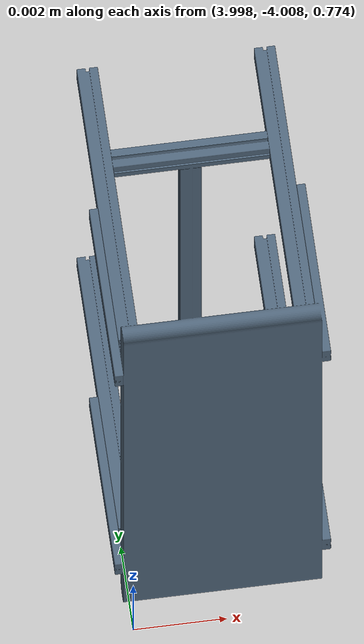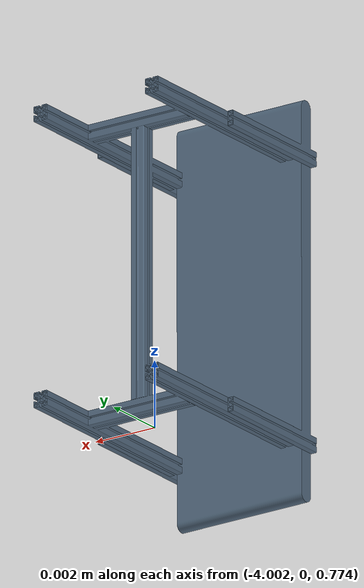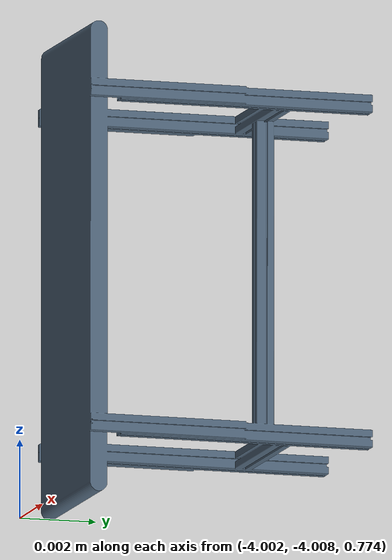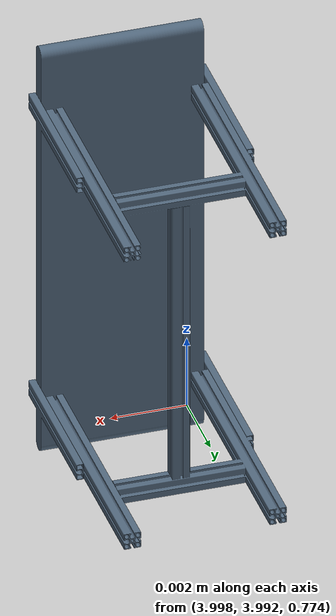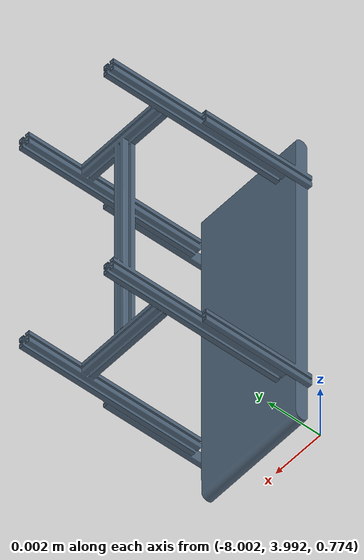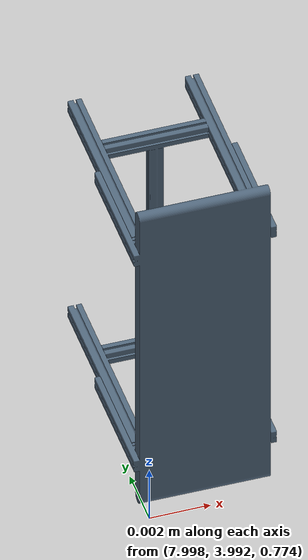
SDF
<?xml version="1.0" ?>
<sdf version="1.6">
<!-- Conveyor Begin -->

  <model name="assembly_line">
    <static>true</static>
    <link name="conveyor_belt_0">
      <collision name="collision_belt_side_back_0">
        <pose>-4 4 0.78 1.57 0 0</pose>
        <geometry>
          <mesh>
            <scale> .01 .01 .01 </scale>
            <uri>model://conveyor_belt/meshes/Conveyor_Belt.stl</uri>
          </mesh>
        </geometry>
      </collision>
      <visual name="visual_0">
        <pose>-4 4 0.78 1.57 0 0</pose>
            <material> <!-- Wheel material -->
              <ambient>0.3137 0.4 0.4824 1</ambient>
              <diffuse>0.3137 0.4 0.4824 1</diffuse>
              <specular>0.3137 0.4 0.4824 1</specular>
              <emissive>0 0 0 1</emissive>
            </material>
        <geometry>
          <mesh>
            <scale> .01 .01 .01 </scale>
            <uri>model://conveyor_belt/meshes/Conveyor_Belt.stl</uri>
          </mesh>
        </geometry>
      </visual>
    </link>
    <link name="conveyor_belt_1">
      <collision name="collision_belt_side_back_1">
        <pose>-4 0 0.78 1.57 0 0</pose>
        <geometry>
          <mesh>
            <scale> .01 .01 .01 </scale>
            <uri>model://conveyor_belt/meshes/Conveyor_Belt.stl</uri>
          </mesh>
        </geometry>
      </collision>
      <visual name="visual_1">
        <pose>-4 0 0.78 1.57 0 0</pose>
            <material> <!-- Wheel material -->
              <ambient>0.3137 0.4 0.4824 1</ambient>
              <diffuse>0.3137 0.4 0.4824 1</diffuse>
              <specular>0.3137 0.4 0.4824 1</specular>
              <emissive>0 0 0 1</emissive>
            </material>
        <geometry>
          <mesh>
            <scale> .01 .01 .01 </scale>
            <uri>model://conveyor_belt/meshes/Conveyor_Belt.stl</uri>
          </mesh>
        </geometry>
      </visual>
    </link>
    <link name="conveyor_belt_2">
      <collision name="collision_belt_side_back_2">
        <pose>-4 -4 0.78 1.57 0 0</pose>
        <geometry>
          <mesh>
            <scale> .01 .01 .01 </scale>
            <uri>model://conveyor_belt/meshes/Conveyor_Belt.stl</uri>
          </mesh>
        </geometry>
      </collision>
      <visual name="visual_2">
        <pose>-4 -4 0.78 1.57 0 0</pose>
            <material> <!-- Wheel material -->
              <ambient>0.3137 0.4 0.4824 1</ambient>
              <diffuse>0.3137 0.4 0.4824 1</diffuse>
              <specular>0.3137 0.4 0.4824 1</specular>
              <emissive>0 0 0 1</emissive>
            </material>
        <geometry>
          <mesh>
            <scale> .01 .01 .01 </scale>
            <uri>model://conveyor_belt/meshes/Conveyor_Belt.stl</uri>
          </mesh>
        </geometry>
      </visual>
    </link>
    <link name="conveyor_belt_3">
      <collision name="collision_belt_side_back_3">
        <pose>4 4 0.78 1.57 0 0</pose>
        <geometry>
          <mesh>
            <scale> .01 .01 .01 </scale>
            <uri>model://conveyor_belt/meshes/Conveyor_Belt.stl</uri>
          </mesh>
        </geometry>
      </collision>
      <visual name="visual_3">
        <pose>4 4 0.78 1.57 0 0</pose>
            <material> <!-- Wheel material -->
              <ambient>0.3137 0.4 0.4824 1</ambient>
              <diffuse>0.3137 0.4 0.4824 1</diffuse>
              <specular>0.3137 0.4 0.4824 1</specular>
              <emissive>0 0 0 1</emissive>
            </material>
        <geometry>
          <mesh>
            <scale> .01 .01 .01 </scale>
            <uri>model://conveyor_belt/meshes/Conveyor_Belt.stl</uri>
          </mesh>
        </geometry>
      </visual>
    </link>
    <link name="conveyor_belt_4">
      <collision name="collision_belt_side_back_4">
        <pose>4 0 0.78 1.57 0 0</pose>
        <geometry>
          <mesh>
            <scale> .01 .01 .01 </scale>
            <uri>model://conveyor_belt/meshes/Conveyor_Belt.stl</uri>
          </mesh>
        </geometry>
      </collision>
      <visual name="visual_4">
        <pose>4 0 0.78 1.57 0 0</pose>
            <material> <!-- Wheel material -->
              <ambient>0.3137 0.4 0.4824 1</ambient>
              <diffuse>0.3137 0.4 0.4824 1</diffuse>
              <specular>0.3137 0.4 0.4824 1</specular>
              <emissive>0 0 0 1</emissive>
            </material>
        <geometry>
          <mesh>
            <scale> .01 .01 .01 </scale>
            <uri>model://conveyor_belt/meshes/Conveyor_Belt.stl</uri>
          </mesh>
        </geometry>
      </visual>
    </link>
    <link name="conveyor_belt_5">
      <collision name="collision_belt_side_back_5">
        <pose>4 -4 0.78 1.57 0 0</pose>
        <geometry>
          <mesh>
            <scale> .01 .01 .01 </scale>
            <uri>model://conveyor_belt/meshes/Conveyor_Belt.stl</uri>
          </mesh>
        </geometry>
      </collision>
      <visual name="visual_5">
        <pose>4 -4 0.78 1.57 0 0</pose>
            <material> <!-- Wheel material -->
              <ambient>0.3137 0.4 0.4824 1</ambient>
              <diffuse>0.3137 0.4 0.4824 1</diffuse>
              <specular>0.3137 0.4 0.4824 1</specular>
              <emissive>0 0 0 1</emissive>
            </material>
        <geometry>
          <mesh>
            <scale> .01 .01 .01 </scale>
            <uri>model://conveyor_belt/meshes/Conveyor_Belt.stl</uri>
          </mesh>
        </geometry>
      </visual>
    </link>
    <link name="conveyor_belt_6">
      <collision name="collision_belt_side_back_6">
        <pose>8 4 0.78 1.57 0 0</pose>
        <geometry>
          <mesh>
            <scale> .01 .01 .01 </scale>
            <uri>model://conveyor_belt/meshes/Conveyor_Belt.stl</uri>
          </mesh>
        </geometry>
      </collision>
      <visual name="visual_6">
        <pose>8 4 0.78 1.57 0 0</pose>
            <material> <!-- Wheel material -->
              <ambient>0.3137 0.4 0.4824 1</ambient>
              <diffuse>0.3137 0.4 0.4824 1</diffuse>
              <specular>0.3137 0.4 0.4824 1</specular>
              <emissive>0 0 0 1</emissive>
            </material>
        <geometry>
          <mesh>
            <scale> .01 .01 .01 </scale>
            <uri>model://conveyor_belt/meshes/Conveyor_Belt.stl</uri>
          </mesh>
        </geometry>
      </visual>
    </link>
    <link name="conveyor_belt_7">
      <collision name="collision_belt_side_back_7">
        <pose>8 0 0.78 1.57 0 0</pose>
        <geometry>
          <mesh>
            <scale> .01 .01 .01 </scale>
            <uri>model://conveyor_belt/meshes/Conveyor_Belt.stl</uri>
          </mesh>
        </geometry>
      </collision>
      <visual name="visual_7">
        <pose>8 0 0.78 1.57 0 0</pose>
            <material> <!-- Wheel material -->
              <ambient>0.3137 0.4 0.4824 1</ambient>
              <diffuse>0.3137 0.4 0.4824 1</diffuse>
              <specular>0.3137 0.4 0.4824 1</specular>
              <emissive>0 0 0 1</emissive>
            </material>
        <geometry>
          <mesh>
            <scale> .01 .01 .01 </scale>
            <uri>model://conveyor_belt/meshes/Conveyor_Belt.stl</uri>
          </mesh>
        </geometry>
      </visual>
    </link>
    <link name="conveyor_belt_8">
      <collision name="collision_belt_side_back_8">
        <pose>8 -4 0.78 1.57 0 0</pose>
        <geometry>
          <mesh>
            <scale> .01 .01 .01 </scale>
            <uri>model://conveyor_belt/meshes/Conveyor_Belt.stl</uri>
          </mesh>
        </geometry>
      </collision>
      <visual name="visual_8">
        <pose>8 -4 0.78 1.57 0 0</pose>
            <material> <!-- Wheel material -->
              <ambient>0.3137 0.4 0.4824 1</ambient>
              <diffuse>0.3137 0.4 0.4824 1</diffuse>
              <specular>0.3137 0.4 0.4824 1</specular>
              <emissive>0 0 0 1</emissive>
            </material>
        <geometry>
          <mesh>
            <scale> .01 .01 .01 </scale>
            <uri>model://conveyor_belt/meshes/Conveyor_Belt.stl</uri>
          </mesh>
        </geometry>
      </visual>
    </link>
    <link name="conveyor_belt_9">
      <collision name="collision_belt_side_back_9">
        <pose>-8 4 0.78 1.57 0 0</pose>
        <geometry>
          <mesh>
            <scale> .01 .01 .01 </scale>
            <uri>model://conveyor_belt/meshes/Conveyor_Belt.stl</uri>
          </mesh>
        </geometry>
      </collision>
      <visual name="visual_9">
        <pose>-8 4 0.78 1.57 0 0</pose>
            <material> <!-- Wheel material -->
              <ambient>0.3137 0.4 0.4824 1</ambient>
              <diffuse>0.3137 0.4 0.4824 1</diffuse>
              <specular>0.3137 0.4 0.4824 1</specular>
              <emissive>0 0 0 1</emissive>
            </material>
        <geometry>
          <mesh>
            <scale> .01 .01 .01 </scale>
            <uri>model://conveyor_belt/meshes/Conveyor_Belt.stl</uri>
          </mesh>
        </geometry>
      </visual>
    </link>
    <link name="conveyor_belt_10">
      <collision name="collision_belt_side_back_10">
        <pose>-8 0 0.78 1.57 0 0</pose>
        <geometry>
          <mesh>
            <scale> .01 .01 .01 </scale>
            <uri>model://conveyor_belt/meshes/Conveyor_Belt.stl</uri>
          </mesh>
        </geometry>
      </collision>
      <visual name="visual_10">
        <pose>-8 0 0.78 1.57 0 0</pose>
            <material> <!-- Wheel material -->
              <ambient>0.3137 0.4 0.4824 1</ambient>
              <diffuse>0.3137 0.4 0.4824 1</diffuse>
              <specular>0.3137 0.4 0.4824 1</specular>
              <emissive>0 0 0 1</emissive>
            </material>
        <geometry>
          <mesh>
            <scale> .01 .01 .01 </scale>
            <uri>model://conveyor_belt/meshes/Conveyor_Belt.stl</uri>
          </mesh>
        </geometry>
      </visual>
    </link>
    <link name="conveyor_belt_11">
      <collision name="collision_belt_side_back_11">
        <pose>-8 -4 0.78 1.57 0 0</pose>
        <geometry>
          <mesh>
            <scale> .01 .01 .01 </scale>
            <uri>model://conveyor_belt/meshes/Conveyor_Belt.stl</uri>
          </mesh>
        </geometry>
      </collision>
      <visual name="visual_11">
        <pose>-8 -4 0.78 1.57 0 0</pose>
            <material> <!-- Wheel material -->
              <ambient>0.3137 0.4 0.4824 1</ambient>
              <diffuse>0.3137 0.4 0.4824 1</diffuse>
              <specular>0.3137 0.4 0.4824 1</specular>
              <emissive>0 0 0 1</emissive>
            </material>
        <geometry>
          <mesh>
            <scale> .01 .01 .01 </scale>
            <uri>model://conveyor_belt/meshes/Conveyor_Belt.stl</uri>
          </mesh>
        </geometry>
      </visual>
    </link>
  </model>

<!-- Conveyor End-->
</sdf>
